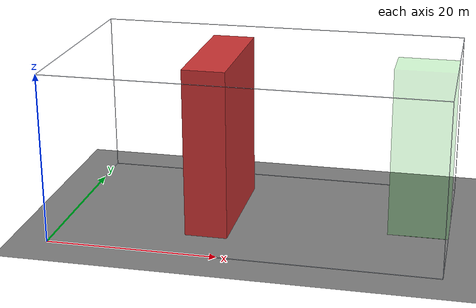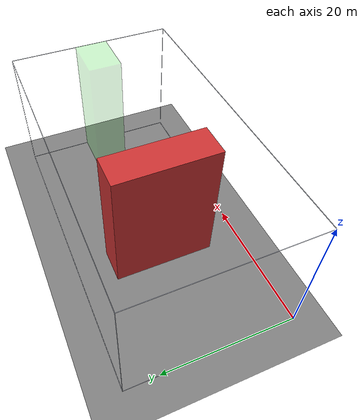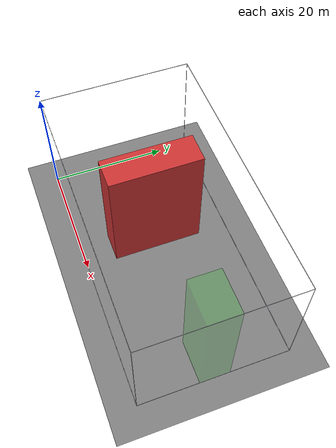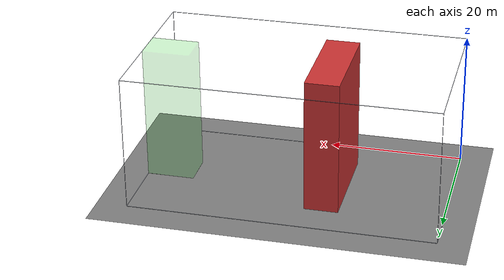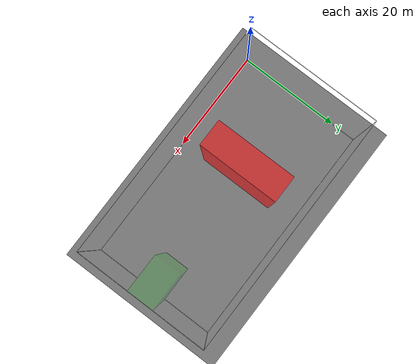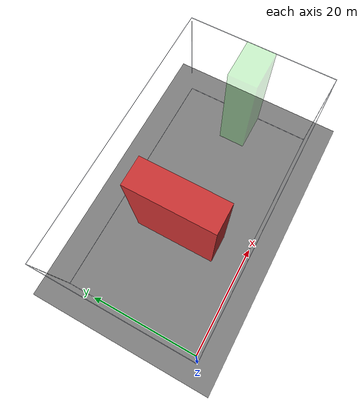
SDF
<?xml version="1.0" ?>
<sdf version="1.9">
  <world name="reach_avoid_arena">

    <!-- Spherical coordinates: required for GPS (navsat) sensor to produce valid lat/lon -->
    <spherical_coordinates>
      <surface_model>EARTH_WGS84</surface_model>
      <world_frame_orientation>ENU</world_frame_orientation>
      <latitude_deg>47.397742</latitude_deg>
      <longitude_deg>8.545594</longitude_deg>
      <elevation>488.0</elevation>
      <heading_deg>0</heading_deg>
    </spherical_coordinates>

    <!-- Physics configuration -->
    <physics name="1kHz" type="dart">
      <max_step_size>0.001</max_step_size>
      <real_time_update_rate>1000</real_time_update_rate>
      <real_time_factor>1.0</real_time_factor>
    </physics>

    <!-- Gazebo system plugins (required for sensor simulation) -->
    <plugin filename="gz-sim-physics-system" name="gz::sim::systems::Physics">
    </plugin>
    <plugin filename="gz-sim-user-commands-system" name="gz::sim::systems::UserCommands">
    </plugin>
    <plugin filename="gz-sim-scene-broadcaster-system" name="gz::sim::systems::SceneBroadcaster">
    </plugin>
    <plugin filename="gz-sim-contact-system" name="gz::sim::systems::Contact">
    </plugin>
    <plugin filename="gz-sim-imu-system" name="gz::sim::systems::Imu">
    </plugin>
    <plugin filename="gz-sim-air-pressure-system" name="gz::sim::systems::AirPressure">
    </plugin>
    <plugin filename="gz-sim-magnetometer-system" name="gz::sim::systems::Magnetometer">
    </plugin>
    <plugin filename="gz-sim-navsat-system" name="gz::sim::systems::NavSat">
    </plugin>
    <plugin filename="gz-sim-sensors-system" name="gz::sim::systems::Sensors">
      <render_engine>ogre2</render_engine>
    </plugin>

    <!-- Sun light -->
    <light type="directional" name="sun">
      <cast_shadows>true</cast_shadows>
      <pose>22.5 12.5 30 0 0 0</pose>
      <diffuse>0.8 0.8 0.8 1</diffuse>
      <specular>0.2 0.2 0.2 1</specular>
      <attenuation>
        <range>1000</range>
        <constant>0.9</constant>
        <linear>0.01</linear>
        <quadratic>0.001</quadratic>
      </attenuation>
      <direction>-0.5 0.1 -0.9</direction>
    </light>

    <!-- Ground plane -->
    <model name="ground_plane">
      <static>true</static>
      <link name="link">
        <collision name="collision">
          <geometry>
            <plane>
              <normal>0 0 1</normal>
              <size>60 40</size>
            </plane>
          </geometry>
        </collision>
        <visual name="visual">
          <geometry>
            <plane>
              <normal>0 0 1</normal>
              <size>60 40</size>
            </plane>
          </geometry>
          <material>
            <ambient>0.5 0.5 0.5 1</ambient>
            <diffuse>0.5 0.5 0.5 1</diffuse>
          </material>
        </visual>
      </link>
    </model>

    <!-- Wall: South (y=0), along x-axis -->
    <model name="wall_south">
      <static>true</static>
      <pose>22.5 0 10 0 0 0</pose>
      <link name="link">
        <collision name="collision">
          <geometry>
            <box><size>45 0.1 20</size></box>
          </geometry>
        </collision>
        <visual name="bottom_edge">
          <pose>0 0 -10 0 0 0</pose>
          <cast_shadows>false</cast_shadows>
          <geometry>
            <box><size>45 0.05 0.05</size></box>
          </geometry>
          <material>
            <ambient>0.85 0.9 1.0 0.55</ambient>
            <diffuse>0.85 0.9 1.0 0.55</diffuse>
            <emissive>0.05 0.08 0.12 1</emissive>
          </material>
          <transparency>0.45</transparency>
        </visual>
        <visual name="top_edge">
          <pose>0 0 10 0 0 0</pose>
          <cast_shadows>false</cast_shadows>
          <geometry>
            <box><size>45 0.05 0.05</size></box>
          </geometry>
          <material>
            <ambient>0.85 0.9 1.0 0.55</ambient>
            <diffuse>0.85 0.9 1.0 0.55</diffuse>
            <emissive>0.05 0.08 0.12 1</emissive>
          </material>
          <transparency>0.45</transparency>
        </visual>
        <visual name="west_edge">
          <pose>-22.5 0 0 0 0 0</pose>
          <cast_shadows>false</cast_shadows>
          <geometry>
            <box><size>0.05 0.05 20</size></box>
          </geometry>
          <material>
            <ambient>0.85 0.9 1.0 0.55</ambient>
            <diffuse>0.85 0.9 1.0 0.55</diffuse>
            <emissive>0.05 0.08 0.12 1</emissive>
          </material>
          <transparency>0.45</transparency>
        </visual>
        <visual name="east_edge">
          <pose>22.5 0 0 0 0 0</pose>
          <cast_shadows>false</cast_shadows>
          <geometry>
            <box><size>0.05 0.05 20</size></box>
          </geometry>
          <material>
            <ambient>0.85 0.9 1.0 0.55</ambient>
            <diffuse>0.85 0.9 1.0 0.55</diffuse>
            <emissive>0.05 0.08 0.12 1</emissive>
          </material>
          <transparency>0.45</transparency>
        </visual>
      </link>
    </model>

    <!-- Wall: North (y=25), along x-axis -->
    <model name="wall_north">
      <static>true</static>
      <pose>22.5 25 10 0 0 0</pose>
      <link name="link">
        <collision name="collision">
          <geometry>
            <box><size>45 0.1 20</size></box>
          </geometry>
        </collision>
        <visual name="bottom_edge">
          <pose>0 0 -10 0 0 0</pose>
          <cast_shadows>false</cast_shadows>
          <geometry>
            <box><size>45 0.05 0.05</size></box>
          </geometry>
          <material>
            <ambient>0.85 0.9 1.0 0.55</ambient>
            <diffuse>0.85 0.9 1.0 0.55</diffuse>
            <emissive>0.05 0.08 0.12 1</emissive>
          </material>
          <transparency>0.45</transparency>
        </visual>
        <visual name="top_edge">
          <pose>0 0 10 0 0 0</pose>
          <cast_shadows>false</cast_shadows>
          <geometry>
            <box><size>45 0.05 0.05</size></box>
          </geometry>
          <material>
            <ambient>0.85 0.9 1.0 0.55</ambient>
            <diffuse>0.85 0.9 1.0 0.55</diffuse>
            <emissive>0.05 0.08 0.12 1</emissive>
          </material>
          <transparency>0.45</transparency>
        </visual>
        <visual name="west_edge">
          <pose>-22.5 0 0 0 0 0</pose>
          <cast_shadows>false</cast_shadows>
          <geometry>
            <box><size>0.05 0.05 20</size></box>
          </geometry>
          <material>
            <ambient>0.85 0.9 1.0 0.55</ambient>
            <diffuse>0.85 0.9 1.0 0.55</diffuse>
            <emissive>0.05 0.08 0.12 1</emissive>
          </material>
          <transparency>0.45</transparency>
        </visual>
        <visual name="east_edge">
          <pose>22.5 0 0 0 0 0</pose>
          <cast_shadows>false</cast_shadows>
          <geometry>
            <box><size>0.05 0.05 20</size></box>
          </geometry>
          <material>
            <ambient>0.85 0.9 1.0 0.55</ambient>
            <diffuse>0.85 0.9 1.0 0.55</diffuse>
            <emissive>0.05 0.08 0.12 1</emissive>
          </material>
          <transparency>0.45</transparency>
        </visual>
      </link>
    </model>

    <!-- Wall: West (x=0), along y-axis -->
    <model name="wall_west">
      <static>true</static>
      <pose>0 12.5 10 0 0 0</pose>
      <link name="link">
        <collision name="collision">
          <geometry>
            <box><size>0.1 25 20</size></box>
          </geometry>
        </collision>
        <visual name="bottom_edge">
          <pose>0 0 -10 0 0 0</pose>
          <cast_shadows>false</cast_shadows>
          <geometry>
            <box><size>0.05 25 0.05</size></box>
          </geometry>
          <material>
            <ambient>0.85 0.9 1.0 0.55</ambient>
            <diffuse>0.85 0.9 1.0 0.55</diffuse>
            <emissive>0.05 0.08 0.12 1</emissive>
          </material>
          <transparency>0.45</transparency>
        </visual>
        <visual name="top_edge">
          <pose>0 0 10 0 0 0</pose>
          <cast_shadows>false</cast_shadows>
          <geometry>
            <box><size>0.05 25 0.05</size></box>
          </geometry>
          <material>
            <ambient>0.85 0.9 1.0 0.55</ambient>
            <diffuse>0.85 0.9 1.0 0.55</diffuse>
            <emissive>0.05 0.08 0.12 1</emissive>
          </material>
          <transparency>0.45</transparency>
        </visual>
        <visual name="south_edge">
          <pose>0 -12.5 0 0 0 0</pose>
          <cast_shadows>false</cast_shadows>
          <geometry>
            <box><size>0.05 0.05 20</size></box>
          </geometry>
          <material>
            <ambient>0.85 0.9 1.0 0.55</ambient>
            <diffuse>0.85 0.9 1.0 0.55</diffuse>
            <emissive>0.05 0.08 0.12 1</emissive>
          </material>
          <transparency>0.45</transparency>
        </visual>
        <visual name="north_edge">
          <pose>0 12.5 0 0 0 0</pose>
          <cast_shadows>false</cast_shadows>
          <geometry>
            <box><size>0.05 0.05 20</size></box>
          </geometry>
          <material>
            <ambient>0.85 0.9 1.0 0.55</ambient>
            <diffuse>0.85 0.9 1.0 0.55</diffuse>
            <emissive>0.05 0.08 0.12 1</emissive>
          </material>
          <transparency>0.45</transparency>
        </visual>
      </link>
    </model>

    <!-- Wall: East (x=45), along y-axis -->
    <model name="wall_east">
      <static>true</static>
      <pose>45 12.5 10 0 0 0</pose>
      <link name="link">
        <collision name="collision">
          <geometry>
            <box><size>0.1 25 20</size></box>
          </geometry>
        </collision>
        <visual name="bottom_edge">
          <pose>0 0 -10 0 0 0</pose>
          <cast_shadows>false</cast_shadows>
          <geometry>
            <box><size>0.05 25 0.05</size></box>
          </geometry>
          <material>
            <ambient>0.85 0.9 1.0 0.55</ambient>
            <diffuse>0.85 0.9 1.0 0.55</diffuse>
            <emissive>0.05 0.08 0.12 1</emissive>
          </material>
          <transparency>0.45</transparency>
        </visual>
        <visual name="top_edge">
          <pose>0 0 10 0 0 0</pose>
          <cast_shadows>false</cast_shadows>
          <geometry>
            <box><size>0.05 25 0.05</size></box>
          </geometry>
          <material>
            <ambient>0.85 0.9 1.0 0.55</ambient>
            <diffuse>0.85 0.9 1.0 0.55</diffuse>
            <emissive>0.05 0.08 0.12 1</emissive>
          </material>
          <transparency>0.45</transparency>
        </visual>
        <visual name="south_edge">
          <pose>0 -12.5 0 0 0 0</pose>
          <cast_shadows>false</cast_shadows>
          <geometry>
            <box><size>0.05 0.05 20</size></box>
          </geometry>
          <material>
            <ambient>0.85 0.9 1.0 0.55</ambient>
            <diffuse>0.85 0.9 1.0 0.55</diffuse>
            <emissive>0.05 0.08 0.12 1</emissive>
          </material>
          <transparency>0.45</transparency>
        </visual>
        <visual name="north_edge">
          <pose>0 12.5 0 0 0 0</pose>
          <cast_shadows>false</cast_shadows>
          <geometry>
            <box><size>0.05 0.05 20</size></box>
          </geometry>
          <material>
            <ambient>0.85 0.9 1.0 0.55</ambient>
            <diffuse>0.85 0.9 1.0 0.55</diffuse>
            <emissive>0.05 0.08 0.12 1</emissive>
          </material>
          <transparency>0.45</transparency>
        </visual>
      </link>
    </model>

    <!--
      Obstacle: box from game_params.yaml
      x_min=15, x_max=20, y_min=5, y_max=20, z_min=0, z_max=20
      Center: (17.5, 12.5, 10.0), Size: (5.0, 15.0, 20.0)
    -->
    <model name="obstacle_1">
      <static>true</static>
      <pose>17.5 12.5 10.0 0 0 0</pose>
      <link name="link">
        <collision name="collision">
          <geometry>
            <box><size>5.0 15.0 20.0</size></box>
          </geometry>
        </collision>
        <visual name="visual">
          <geometry>
            <box><size>5.0 15.0 20.0</size></box>
          </geometry>
          <material>
            <ambient>0.8 0.2 0.2 1</ambient>
            <diffuse>0.8 0.2 0.2 1</diffuse>
          </material>
        </visual>
      </link>
    </model>

    <model name="target_region_ground">
      <static>true</static>
      <pose>41.5 12.5 0.01 0 0 0</pose>
      <link name="link">
        <visual name="visual">
          <geometry>
            <box><size>7.0 5.0 0.02</size></box>
          </geometry>
          <material>
            <ambient>0.0 0.8 0.0 0.5</ambient>
            <diffuse>0.0 0.8 0.0 0.5</diffuse>
          </material>
        </visual>
      </link>
    </model>

    <model name="target_region_volume">
      <static>true</static>
      <pose>41.5 12.5 10.0 0 0 0</pose>
      <link name="link">
        <visual name="visual">
          <geometry>
            <box><size>7.0 5.0 20.0</size></box>
          </geometry>
          <material>
            <ambient>0.0 0.8 0.0 0.15</ambient>
            <diffuse>0.0 0.8 0.0 0.15</diffuse>
          </material>
          <transparency>0.85</transparency>
        </visual>
      </link>
    </model>

    <!-- Fixed overview camera for clean, repeatable recordings -->
    <model name="overview_camera">
      <static>true</static>
      <pose>22.5 -18.0 22.0 0 0.48 1.57</pose>
      <link name="camera_link">
        <sensor name="overview_sensor" type="camera">
          <always_on>true</always_on>
          <update_rate>12</update_rate>
          <visualize>false</visualize>
          <topic>/overview_camera</topic>
          <camera>
            <horizontal_fov>1.35</horizontal_fov>
            <image>
              <width>960</width>
              <height>540</height>
              <format>R8G8B8</format>
            </image>
            <clip>
              <near>0.1</near>
              <far>200.0</far>
            </clip>
          </camera>
        </sensor>
      </link>
    </model>

  </world>
</sdf>
